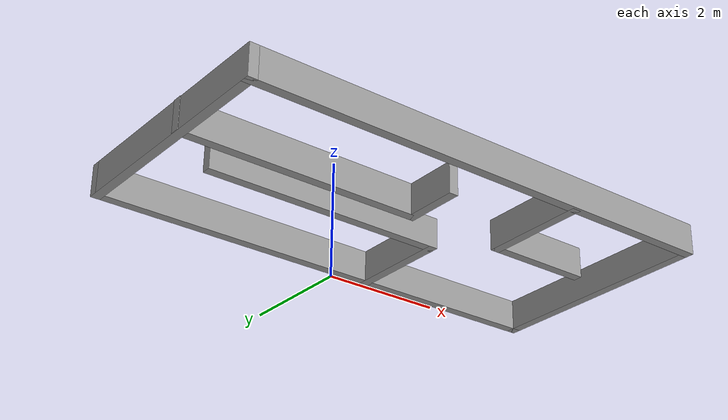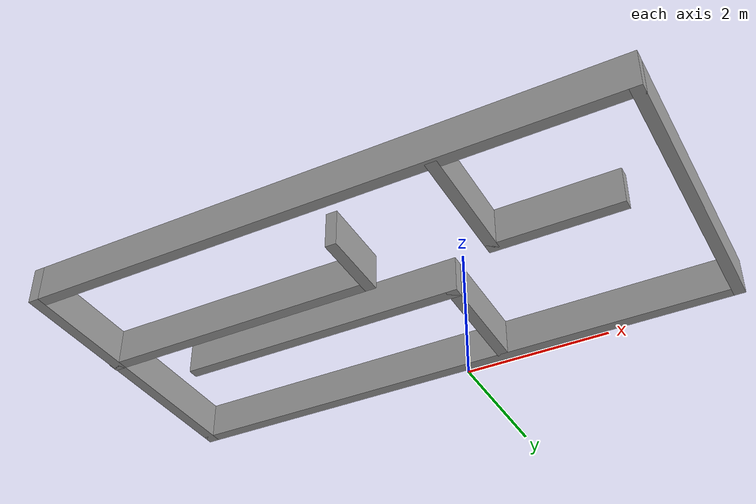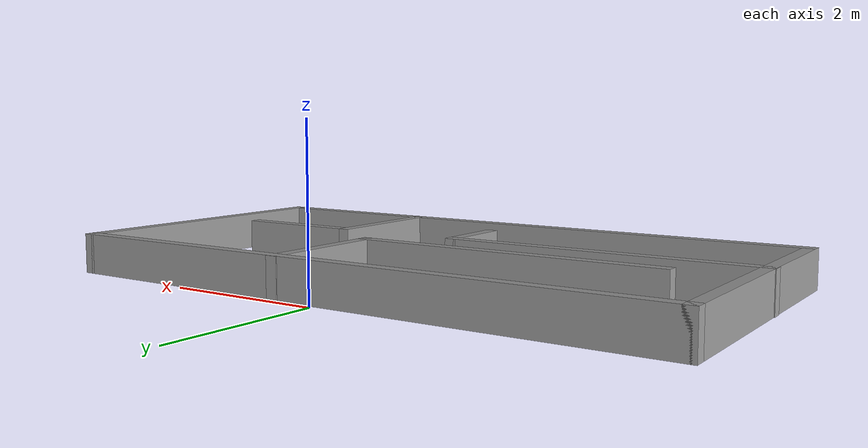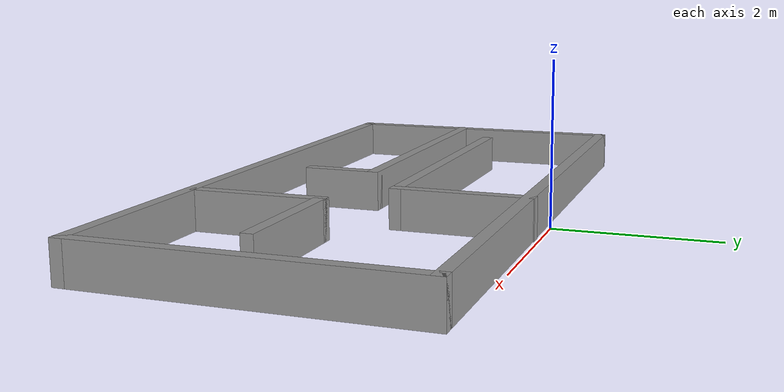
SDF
<?xml version='1.0'?>
<sdf version='1.7'>
  <model name='zoom'>
    <pose>-0.1975 -2.027 0 0 -0 0</pose>
    <link name='Wall_0'>
      <collision name='Wall_0_Collision'>
        <geometry>
          <box>
            <size>4 0.15 0.5</size>
          </box>
        </geometry>
        <pose>0 0 0.25 0 -0 0</pose>
      </collision>
      <visual name='Wall_0_Visual'>
        <pose>0 0 0.25 0 -0 0</pose>
        <geometry>
          <box>
            <size>4 0.15 0.5</size>
          </box>
        </geometry>
        <material>
          <script>
            <uri>file://media/materials/scripts/gazebo.material</uri>
            <name>Gazebo/Grey</name>
          </script>
          <ambient>1 1 1 1</ambient>
        </material>
        <meta>
          <layer>0</layer>
        </meta>
      </visual>
      <pose>-3.9205 -0.027 0 0 -0 -1.5708</pose>
    </link>
    <link name='Wall_10'>
      <collision name='Wall_10_Collision'>
        <geometry>
          <box>
            <size>4 0.15 0.5</size>
          </box>
        </geometry>
        <pose>0 0 0.25 0 -0 0</pose>
      </collision>
      <visual name='Wall_10_Visual'>
        <pose>0 0 0.25 0 -0 0</pose>
        <geometry>
          <box>
            <size>4 0.15 0.5</size>
          </box>
        </geometry>
        <material>
          <script>
            <uri>file://media/materials/scripts/gazebo.material</uri>
            <name>Gazebo/Grey</name>
          </script>
          <ambient>1 1 1 1</ambient>
        </material>
        <meta>
          <layer>0</layer>
        </meta>
      </visual>
      <pose>-2.0045 -0.326 0 0 -0 0</pose>
    </link>
    <link name='Wall_11'>
      <collision name='Wall_11_Collision'>
        <geometry>
          <box>
            <size>1 0.15 0.5</size>
          </box>
        </geometry>
        <pose>0 0 0.25 0 -0 0</pose>
      </collision>
      <visual name='Wall_11_Visual'>
        <pose>0 0 0.25 0 -0 0</pose>
        <geometry>
          <box>
            <size>1 0.15 0.5</size>
          </box>
        </geometry>
        <material>
          <script>
            <uri>file://media/materials/scripts/gazebo.material</uri>
            <name>Gazebo/Grey</name>
          </script>
          <ambient>1 1 1 1</ambient>
        </material>
        <meta>
          <layer>0</layer>
        </meta>
      </visual>
      <pose>-0.0795 -0.751 0 0 -0 -1.5708</pose>
    </link>
    <link name='Wall_13'>
      <collision name='Wall_13_Collision'>
        <geometry>
          <box>
            <size>1.75 0.15 0.5</size>
          </box>
        </geometry>
        <pose>0 0 0.25 0 -0 0</pose>
      </collision>
      <visual name='Wall_13_Visual'>
        <pose>0 0 0.25 0 -0 0</pose>
        <geometry>
          <box>
            <size>1.75 0.15 0.5</size>
          </box>
        </geometry>
        <material>
          <script>
            <uri>file://media/materials/scripts/gazebo.material</uri>
            <name>Gazebo/Grey</name>
          </script>
          <ambient>1 1 1 1</ambient>
        </material>
        <meta>
          <layer>0</layer>
        </meta>
      </visual>
      <pose>1.5915 -1.107 0 0 -0 1.5708</pose>
    </link>
    <link name='Wall_14'>
      <collision name='Wall_14_Collision'>
        <geometry>
          <box>
            <size>1.75 0.15 0.5</size>
          </box>
        </geometry>
        <pose>0 0 0.25 0 -0 0</pose>
      </collision>
      <visual name='Wall_14_Visual'>
        <pose>0 0 0.25 0 -0 0</pose>
        <geometry>
          <box>
            <size>1.75 0.15 0.5</size>
          </box>
        </geometry>
        <material>
          <script>
            <uri>file://media/materials/scripts/gazebo.material</uri>
            <name>Gazebo/Grey</name>
          </script>
          <ambient>1 1 1 1</ambient>
        </material>
        <meta>
          <layer>0</layer>
        </meta>
      </visual>
      <pose>2.3915 -0.307 0 0 -0 0</pose>
    </link>
    <link name='Wall_2'>
      <collision name='Wall_2_Collision'>
        <geometry>
          <box>
            <size>8 0.15 0.5</size>
          </box>
        </geometry>
        <pose>0 0 0.25 0 -0 0</pose>
      </collision>
      <visual name='Wall_2_Visual'>
        <pose>0 0 0.25 0 -0 0</pose>
        <geometry>
          <box>
            <size>8 0.15 0.5</size>
          </box>
        </geometry>
        <material>
          <script>
            <uri>file://media/materials/scripts/gazebo.material</uri>
            <name>Gazebo/Grey</name>
          </script>
          <ambient>1 1 1 1</ambient>
        </material>
        <meta>
          <layer>0</layer>
        </meta>
      </visual>
      <pose>0.0045 1.898 0 0 -0 0</pose>
    </link>
    <link name='Wall_3'>
      <collision name='Wall_3_Collision'>
        <geometry>
          <box>
            <size>4 0.15 0.5</size>
          </box>
        </geometry>
        <pose>0 0 0.25 0 -0 0</pose>
      </collision>
      <visual name='Wall_3_Visual'>
        <pose>0 0 0.25 0 -0 0</pose>
        <geometry>
          <box>
            <size>4 0.15 0.5</size>
          </box>
        </geometry>
        <material>
          <script>
            <uri>file://media/materials/scripts/gazebo.material</uri>
            <name>Gazebo/Grey</name>
          </script>
          <ambient>1 1 1 1</ambient>
        </material>
        <meta>
          <layer>0</layer>
        </meta>
      </visual>
      <pose>3.9295 -0.027 0 0 -0 -1.5708</pose>
    </link>
    <link name='Wall_4'>
      <collision name='Wall_4_Collision'>
        <geometry>
          <box>
            <size>8 0.15 0.5</size>
          </box>
        </geometry>
        <pose>0 0 0.25 0 -0 0</pose>
      </collision>
      <visual name='Wall_4_Visual'>
        <pose>0 0 0.25 0 -0 0</pose>
        <geometry>
          <box>
            <size>8 0.15 0.5</size>
          </box>
        </geometry>
        <material>
          <script>
            <uri>file://media/materials/scripts/gazebo.material</uri>
            <name>Gazebo/Grey</name>
          </script>
          <ambient>1 1 1 1</ambient>
        </material>
        <meta>
          <layer>0</layer>
        </meta>
      </visual>
      <pose>0.0045 -1.952 0 0 -0 3.14159</pose>
    </link>
    <link name='Wall_6'>
      <collision name='Wall_6_Collision'>
        <geometry>
          <box>
            <size>1.75 0.15 0.5</size>
          </box>
        </geometry>
        <pose>0 0 0.25 0 -0 0</pose>
      </collision>
      <visual name='Wall_6_Visual'>
        <pose>0 0 0.25 0 -0 0</pose>
        <geometry>
          <box>
            <size>1.75 0.15 0.5</size>
          </box>
        </geometry>
        <material>
          <script>
            <uri>file://media/materials/scripts/gazebo.material</uri>
            <name>Gazebo/Grey</name>
          </script>
          <ambient>1 1 1 1</ambient>
        </material>
        <meta>
          <layer>0</layer>
        </meta>
      </visual>
      <pose>0.7855 1.11 0 0 -0 -1.5708</pose>
    </link>
    <link name='Wall_7'>
      <collision name='Wall_7_Collision'>
        <geometry>
          <box>
            <size>4 0.15 0.5</size>
          </box>
        </geometry>
        <pose>0 0 0.25 0 -0 0</pose>
      </collision>
      <visual name='Wall_7_Visual'>
        <pose>0 0 0.25 0 -0 0</pose>
        <geometry>
          <box>
            <size>4 0.15 0.5</size>
          </box>
        </geometry>
        <material>
          <script>
            <uri>file://media/materials/scripts/gazebo.material</uri>
            <name>Gazebo/Grey</name>
          </script>
          <ambient>1 1 1 1</ambient>
        </material>
        <meta>
          <layer>0</layer>
        </meta>
      </visual>
      <pose>-1.1395 0.31 0 0 -0 3.14159</pose>
    </link>
    <static>1</static>
  </model>
</sdf>
